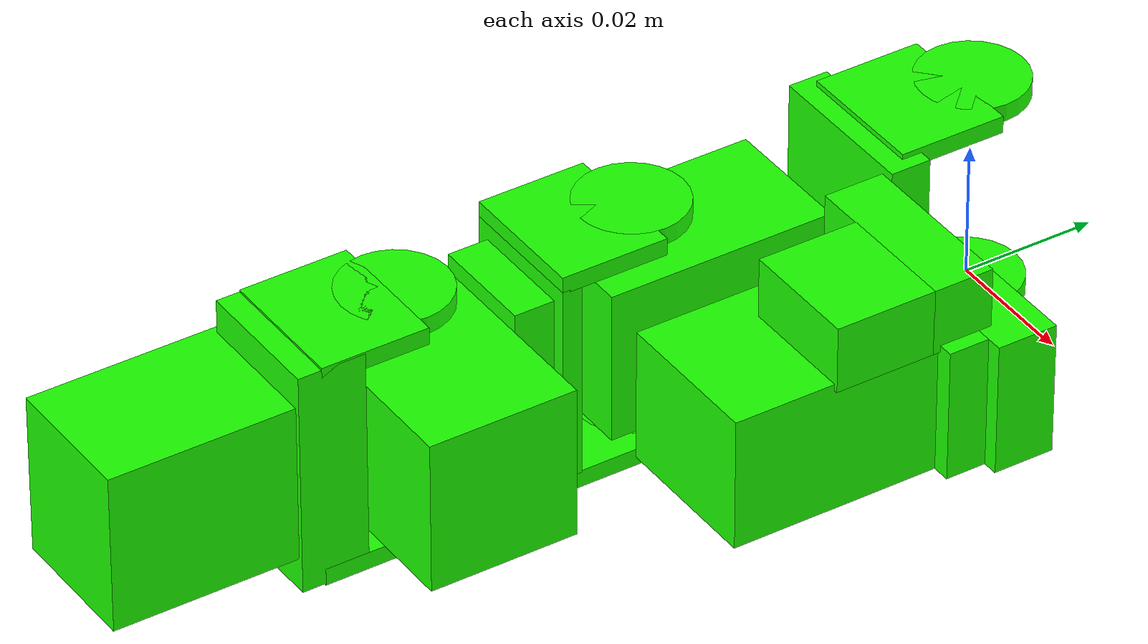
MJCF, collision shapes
<?xml version="1.0"?>
<mujoco>
  <compiler angle="radian" meshdir="assets" autolimits="true"/>
  <asset>
    <material name="gray" rgba="0.4 0.4 0.4 1"/>
    <material name="yellow" rgba="0.866667 0.866667 0.0509804 1"/>
    <material name="light_orange" rgba="1 0.749 0 1"/>
    <material name="green" rgba="0.11 1 0 0.2"/>
    <mesh file="dip.stl"/>
    <mesh file="pip.stl"/>
    <mesh file="fingertip.stl"/>
    <mesh file="mcp_joint.stl"/>
  </asset>
  <default>
    <default class="finger">
      <material specular="0.5" shininess="0.25"/>
      <default class="visual">
        <geom type="mesh" contype="0" conaffinity="0" group="2"/>
      </default>
      <default class="collision_box">
        <geom group="3" type="box" mass="0" material="green"/>
      </default>
      <default class="collision_cylinder">
        <geom group="3" type="cylinder" mass="0" material="green"/>
      </default>
      <joint axis="0 0 -1" damping="2000"/>
    </default>
  </default>
  <worldbody>
    <body name="knuckle_FF" pos="0 0 0" quat="0 0 0 1">
      <joint name="j0_FF" range="-0.314 2.23"/>
      <inertial mass="0.044" pos="0 0 0" diaginertia="1.47756e-05 1.31982e-05 6.0802e-06"/>
      <geom class="visual" pos="0.0084069 0.00776624 0.0146574" quat="1 0 0 0" mesh="mcp_joint" material="gray"/>

      <geom name="knuckle_b_1" class="collision_box" pos="0.0 0.018 0.0145" euler="0 0 0"
      size="0.012 0.003 0.0165"/>
      <geom name="knuckle_b_2" class="collision_box" pos="0.0 0.01 -0.0015" euler="0 0 0" size="0.01 0.008 0.0013"/>
      <geom name="knuckle_c_3" class="collision_cylinder" pos="0.0 0.0 -0.0015" euler="0 0 0" size="0.008 0.0013 "/>
      <geom name="knuckle_b_4" class="collision_box" pos="0.0 0.01 0.0305" euler="0 0 0" size="0.01 0.008 0.0013"/>
      <geom name="knuckle_c_5" class="collision_cylinder" pos="0.0 0.0 0.0305" euler="0 0 0" size="0.008 0.0013 "/>
      <geom name="knuckle_b_6" class="collision_box" pos="-0.0278 0.021 0.014" euler="0 0 0"
       size="0.0152 0.0045 0.01"/>
      <geom name="knuckle_b_7" class="collision_box" pos="-0.0265 0.0285 0.014" euler="0 0 0"
       size="0.0142 0.003 0.01"/>
      <geom name="knuckle_b_8" class="collision_box" pos="-0.026 0.0281 0.028" euler="0 0 0"
       size="0.0125 0.0045 0.005"/>
      <geom name="knuckle_b_9" class="collision_box" pos="-0.0295 0.04 0.028" euler="0 0 0"
       size="0.009 0.0075 0.005"/>
      <geom name="knuckle_b_10" class="collision_box" pos="-0.0265 0.047 0.014" euler="0 0 0"
       size="0.0115 0.0156 0.01"/>

      <body name="proximal_FF" pos="-0.0122 0.0381 0.0145" quat="0.5 -0.5 -0.5 0.5">
        <joint name="j1_FF" range="-1.047 1.047"/>
        <inertial mass="0.032" pos="0 0 0" diaginertia="4.7981e-06 4.23406e-06 2.86184e-06"/>
        <geom class="visual" pos="0.00964336 0.0003 0.000784034" quat="0.5 -0.5 -0.5 -0.5" mesh="pip" material="yellow"/>

        <geom name="proximal_b_1" class="collision_box" pos="0.0075 0.0 -0.013"
        euler="0 0 0" size="0.017 0.0115 0.01"/>

        <body name="middle_FF" pos="0.015 0.0143 -0.013" quat="0.5 0.5 -0.5 0.5">
          <joint name="j2_FF" range="-0.506 1.885"/>
          <inertial mass="0.037" pos="0 0 0" diaginertia="6.68256e-06 6.24841e-06 5.02002e-06"/>
          <geom class="visual" pos="0.0211334 -0.00843212 0.00978509" quat="0 -1 0 0" mesh="dip" material="yellow"/>

          <geom name="middle_b_1" class="collision_box" pos="0.0 -0.0155 0.0145" euler="0 0 0"
           size="0.01 0.0015 0.015"/>
          <geom name="middle_b_2" class="collision_box" pos="0.0 -0.009 -0.0015" euler="0 0 0" size="0.01 0.008 0.0013"/>
          <geom name="middle_c_3" class="collision_cylinder" pos="0.0 0.0 -0.0015" euler="0 0 0" size="0.008 0.0013 "/>
          <geom name="middle_b_4" class="collision_box" pos="0.0 -0.009 0.0305" euler="0 0 0" size="0.01 0.008 0.0013"/>
          <geom name="middle_c_5" class="collision_cylinder" pos="0.0 0.0 0.0305" euler="0 0 0" size="0.008 0.0013 "/>

          <geom name="middle_b_6" class="collision_box" pos="0.0 -0.019 0.0145" euler="0 0 0"
           size="0.008 0.004 0.0125"/>
          <geom name="middle_b_7" class="collision_box" pos="0.0075 -0.0352 0.0145" euler="0 0 0"
           size="0.017 0.011 0.0115"/>

          <body name="distal_FF" pos="-4.08806e-09 -0.0361 0.0002">
            <joint name="j3_FF" range="-0.366 2.042"/>
            <inertial mass="0.016" pos="0 0 0" diaginertia="3.37527e-06 2.863e-06 1.54873e-06"/>
            <geom class="visual" pos="0.0132864 -0.00611424 0.0145" quat="0 1 0 0" mesh="fingertip" material="yellow"/>

            <geom name="distal_b_1" class="collision_box" pos="0.0 -0.0155 0.0145" euler="0 0 0"
             size="0.01 0.005 0.017"/>
            <geom name="distal_b_2" class="collision_box" pos="0.0 -0.009 -0.0015" euler="0 0 0" size="0.01 0.008 0.0013"/>
            <geom name="distal_c_3" class="collision_cylinder" pos="0.0 0.0 -0.0015" euler="0 0 0" size="0.008 0.0013 "/>
            <geom name="distal_b_4" class="collision_box" pos="0.0 -0.009 0.0305" euler="0 0 0" size="0.01 0.008 0.0013"/>
            <geom name="distal_c_5" class="collision_cylinder" pos="0.0 0.0 0.0305" euler="0 0 0" size="0.008 0.0013 "/>
            <geom name="distal_b_6" class="collision_box" pos="-0.0009 -0.034 0.0145" euler="0 0 0"
             size="0.0102 0.014 0.012"/>

          </body>
        </body>
      </body>

    </body>
  </worldbody>
</mujoco>
